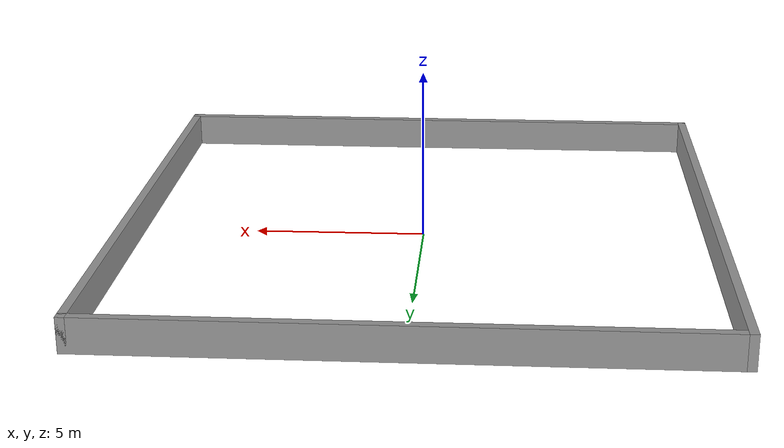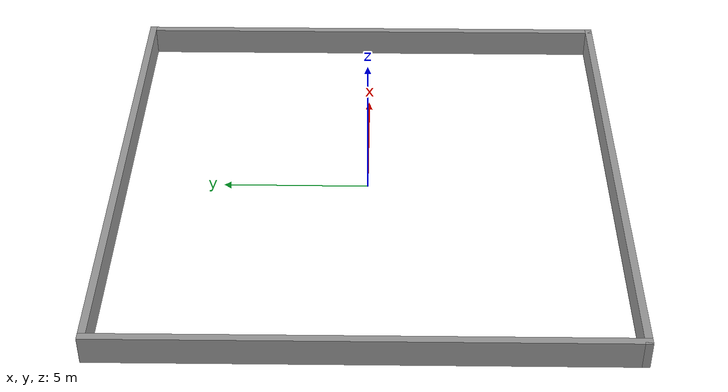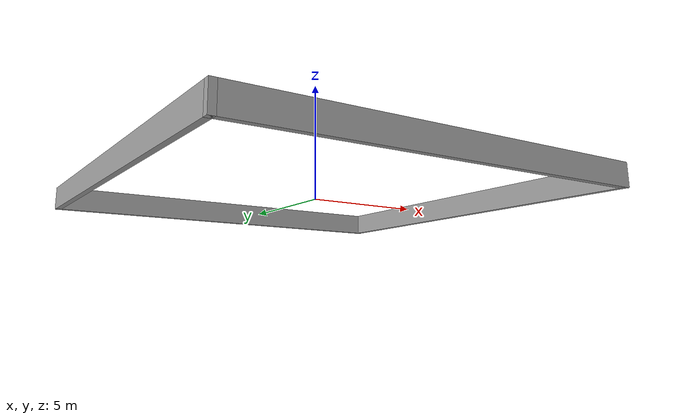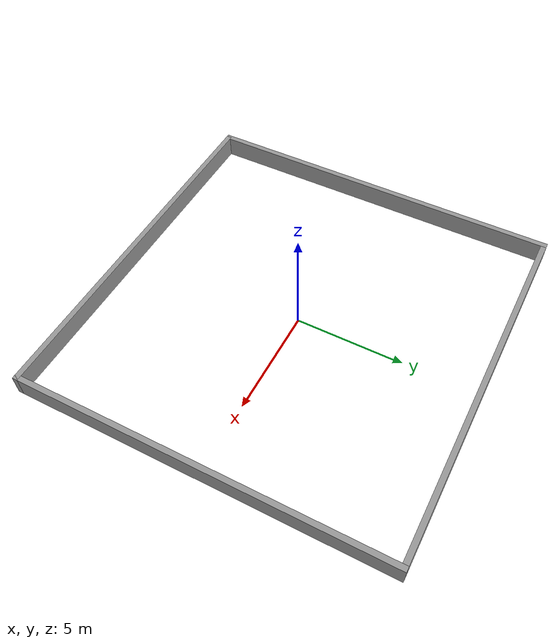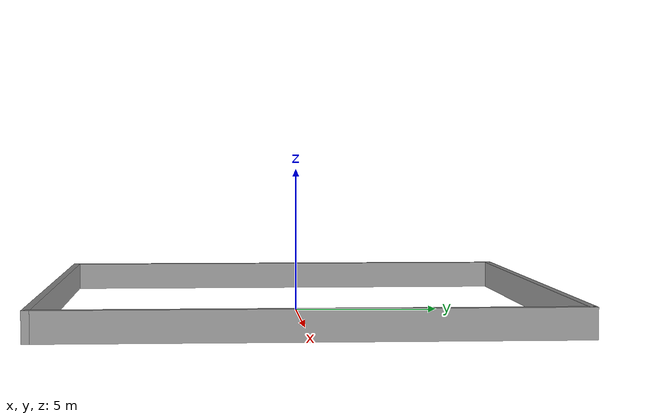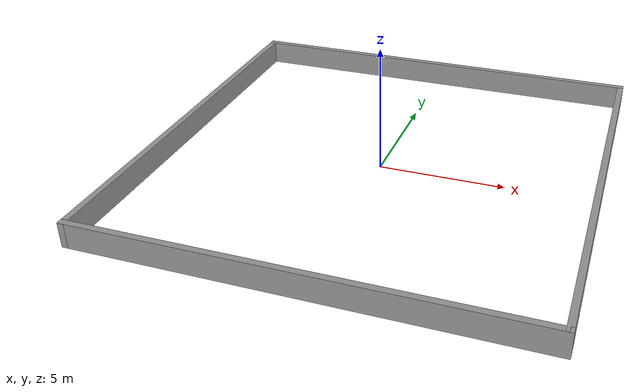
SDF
<?xml version='1.0'?>
<sdf version='1.6'>
  <model name='energy_border_1'>
    <pose frame=''>0 0 0 0 -0 0</pose>
    <link name='Wall_5'>
      <collision name='Wall_5_Collision'>
        <geometry>
          <box>
            <size>17.25 0.25 1</size>
          </box>
        </geometry>
        <pose frame=''>0 0 0.5 0 -0 0</pose>
      </collision>
      <visual name='Wall_5_Visual'>
        <pose frame=''>0 0 0.5 0 -0 0</pose>
        <geometry>
          <box>
            <size>17.25 0.25 1</size>
          </box>
        </geometry>
        <material>
          <script>
            <uri>file://media/materials/scripts/gazebo.material</uri>
            <name>Gazebo/Grey</name>
          </script>
          <ambient>1 1 1 1</ambient>
        </material>
        <meta>
          <layer>0</layer>
        </meta>
      </visual>
      <pose frame=''>-8.5 0 0 0 -0 1.5708</pose>
    </link>
    <link name='Wall_6'>
      <collision name='Wall_6_Collision'>
        <geometry>
          <box>
            <size>17.25 0.25 1</size>
          </box>
        </geometry>
        <pose frame=''>0 0 0.5 0 -0 0</pose>
      </collision>
      <visual name='Wall_6_Visual'>
        <pose frame=''>0 0 0.5 0 -0 0</pose>
        <geometry>
          <box>
            <size>17.25 0.25 1</size>
          </box>
        </geometry>
        <material>
          <script>
            <uri>file://media/materials/scripts/gazebo.material</uri>
            <name>Gazebo/Grey</name>
          </script>
          <ambient>1 1 1 1</ambient>
        </material>
        <meta>
          <layer>0</layer>
        </meta>
      </visual>
      <pose frame=''>0 8.5 0 0 -0 0</pose>
    </link>
    <link name='Wall_7'>
      <collision name='Wall_7_Collision'>
        <geometry>
          <box>
            <size>17.25 0.25 1</size>
          </box>
        </geometry>
        <pose frame=''>0 0 0.5 0 -0 0</pose>
      </collision>
      <visual name='Wall_7_Visual'>
        <pose frame=''>0 0 0.5 0 -0 0</pose>
        <geometry>
          <box>
            <size>17.25 0.25 1</size>
          </box>
        </geometry>
        <material>
          <script>
            <uri>file://media/materials/scripts/gazebo.material</uri>
            <name>Gazebo/Grey</name>
          </script>
          <ambient>1 1 1 1</ambient>
        </material>
        <meta>
          <layer>0</layer>
        </meta>
      </visual>
      <pose frame=''>8.5 0 0 0 -0 -1.5708</pose>
    </link>
    <link name='Wall_8'>
      <collision name='Wall_8_Collision'>
        <geometry>
          <box>
            <size>17.25 0.25 1</size>
          </box>
        </geometry>
        <pose frame=''>0 0 0.5 0 -0 0</pose>
      </collision>
      <visual name='Wall_8_Visual'>
        <pose frame=''>0 0 0.5 0 -0 0</pose>
        <geometry>
          <box>
            <size>17.25 0.25 1</size>
          </box>
        </geometry>
        <material>
          <script>
            <uri>file://media/materials/scripts/gazebo.material</uri>
            <name>Gazebo/Grey</name>
          </script>
          <ambient>1 1 1 1</ambient>
        </material>
        <meta>
          <layer>0</layer>
        </meta>
      </visual>
      <pose frame=''>0 -8.5 0 0 -0 3.14159</pose>
    </link>
    <static>1</static>
  </model>
</sdf>
